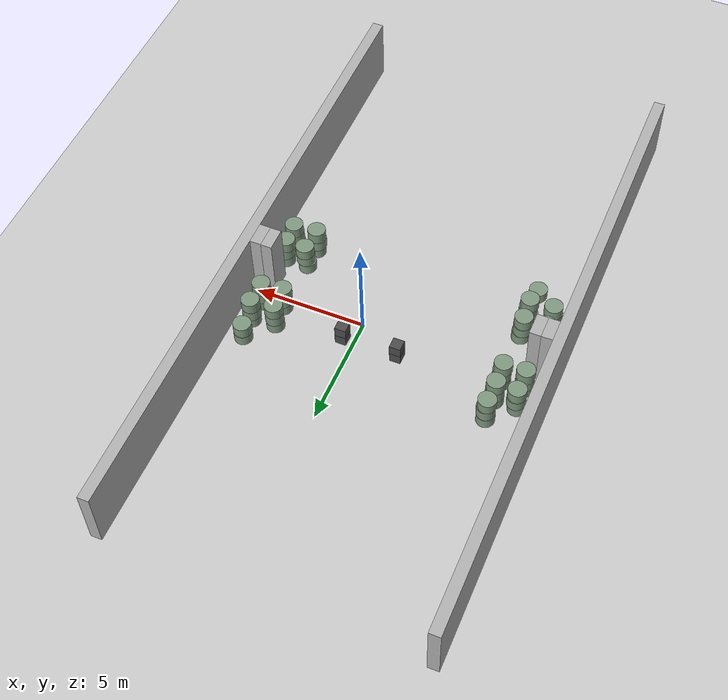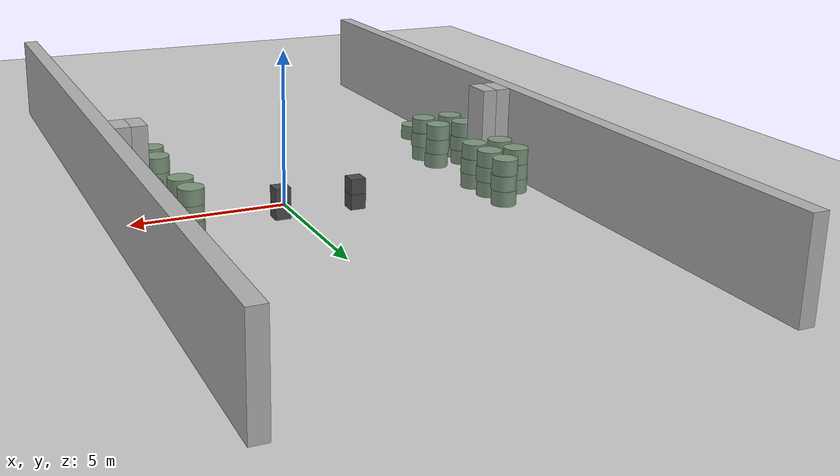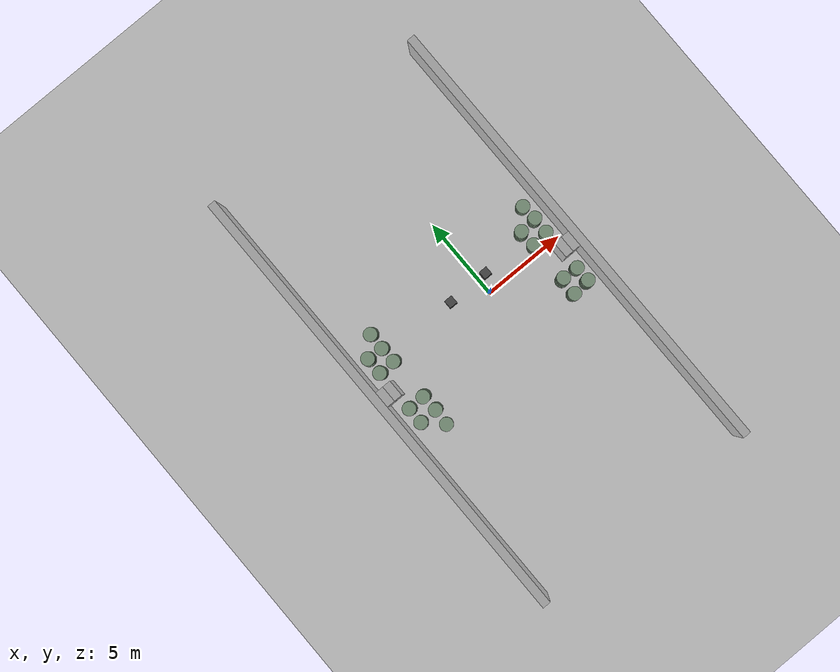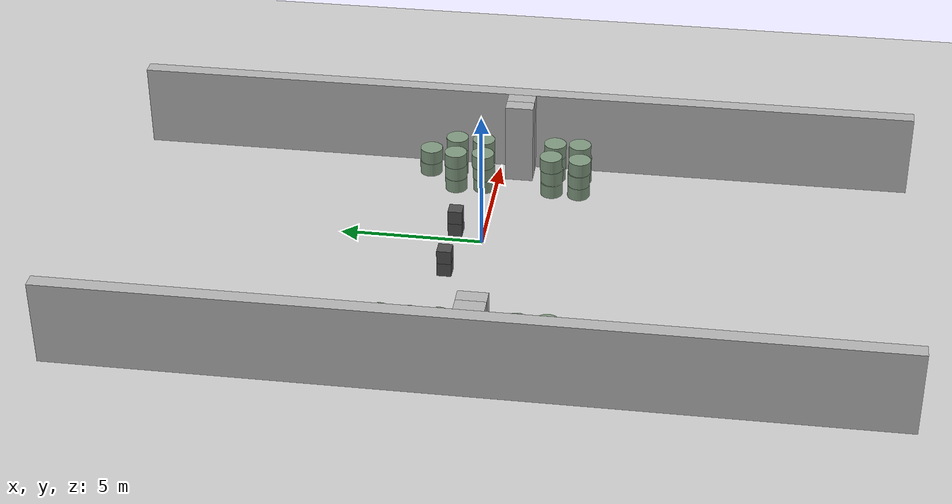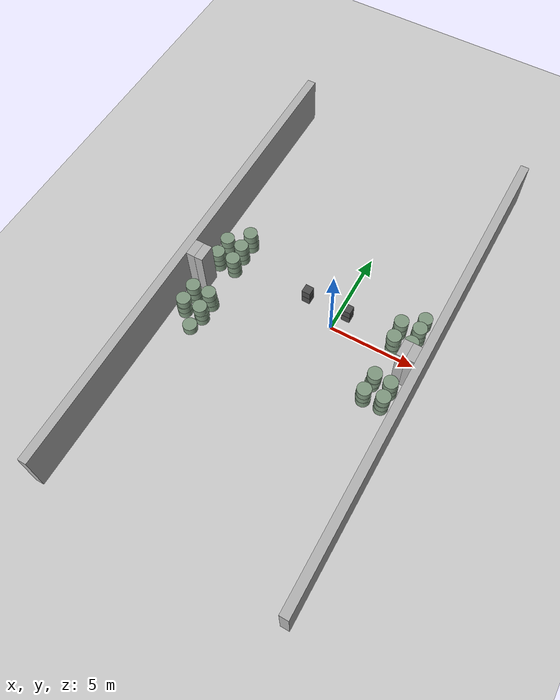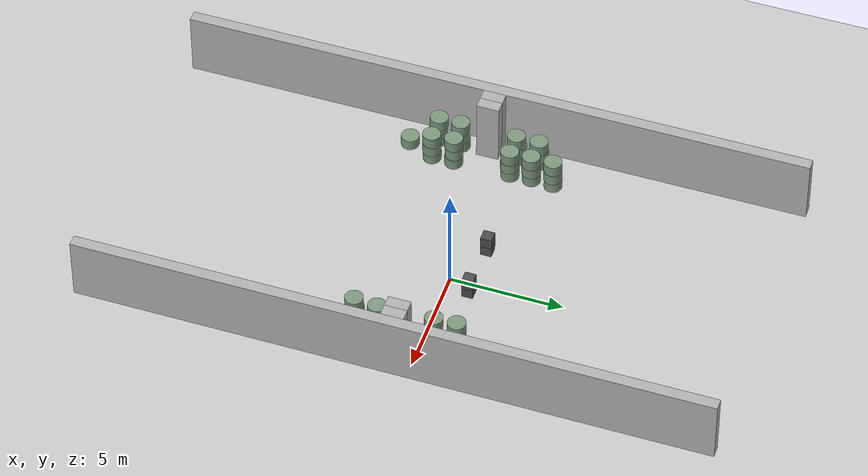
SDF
<sdf version="1.6">
 <world name="default">
  <include><uri>model://ground_plane</uri></include>
  <model name="wall_0">
   <pose>-8.5 -0.75 1.5 0 -0 0</pose>
   <static>True</static>
   <link name="link">
    <inertial>
     <mass>100</mass>
     <inertia>
      <ixx>0.166667</ixx>
      <ixy>0</ixy>
      <ixz>0</ixz>
      <iyy>0.166667</iyy>
      <iyz>0</iyz>
      <izz>0.166667</izz>
     </inertia>
    </inertial>
    <collision name="collision"><geometry><box><size>0.5 28.0 3.0</size></box></geometry></collision>
    <visual name="visual">
     <geometry><box><size>0.5 28.0 3.0</size></box></geometry>
     <material><ambient>0.7 0.7 0.7 1</ambient><diffuse>0.7 0.7 0.7 1</diffuse></material>
    </visual>
   </link>
  </model>
  <model name="wall_2">
   <pose>-8.0 -0.75 1.5 0 -0 0</pose>
   <static>True</static>
   <link name="link">
    <inertial>
     <mass>100</mass>
     <inertia>
      <ixx>0.166667</ixx>
      <ixy>0</ixy>
      <ixz>0</ixz>
      <iyy>0.166667</iyy>
      <iyz>0</iyz>
      <izz>0.166667</izz>
     </inertia>
    </inertial>
    <collision name="collision"><geometry><box><size>0.5 1.0 3.0</size></box></geometry></collision>
    <visual name="visual">
     <geometry><box><size>0.5 1.0 3.0</size></box></geometry>
     <material><ambient>0.7 0.7 0.7 1</ambient><diffuse>0.7 0.7 0.7 1</diffuse></material>
    </visual>
   </link>
  </model>
  <model name="wall_5">
   <pose>-7.5 -0.75 1.5 0 -0 0</pose>
   <static>True</static>
   <link name="link">
    <inertial>
     <mass>100</mass>
     <inertia>
      <ixx>0.166667</ixx>
      <ixy>0</ixy>
      <ixz>0</ixz>
      <iyy>0.166667</iyy>
      <iyz>0</iyz>
      <izz>0.166667</izz>
     </inertia>
    </inertial>
    <collision name="collision"><geometry><box><size>0.5 1.0 3.0</size></box></geometry></collision>
    <visual name="visual">
     <geometry><box><size>0.5 1.0 3.0</size></box></geometry>
     <material><ambient>0.7 0.7 0.7 1</ambient><diffuse>0.7 0.7 0.7 1</diffuse></material>
    </visual>
   </link>
  </model>
  <model name="wall_8">
   <pose>4.5 -0.75 1.5 0 -0 0</pose>
   <static>True</static>
   <link name="link">
    <inertial>
     <mass>100</mass>
     <inertia>
      <ixx>0.166667</ixx>
      <ixy>0</ixy>
      <ixz>0</ixz>
      <iyy>0.166667</iyy>
      <iyz>0</iyz>
      <izz>0.166667</izz>
     </inertia>
    </inertial>
    <collision name="collision"><geometry><box><size>0.5 1.0 3.0</size></box></geometry></collision>
    <visual name="visual">
     <geometry><box><size>0.5 1.0 3.0</size></box></geometry>
     <material><ambient>0.7 0.7 0.7 1</ambient><diffuse>0.7 0.7 0.7 1</diffuse></material>
    </visual>
   </link>
  </model>
  <model name="wall_11">
   <pose>5.0 -0.75 1.5 0 -0 0</pose>
   <static>True</static>
   <link name="link">
    <inertial>
     <mass>100</mass>
     <inertia>
      <ixx>0.166667</ixx>
      <ixy>0</ixy>
      <ixz>0</ixz>
      <iyy>0.166667</iyy>
      <iyz>0</iyz>
      <izz>0.166667</izz>
     </inertia>
    </inertial>
    <collision name="collision"><geometry><box><size>0.5 1.0 3.0</size></box></geometry></collision>
    <visual name="visual">
     <geometry><box><size>0.5 1.0 3.0</size></box></geometry>
     <material><ambient>0.7 0.7 0.7 1</ambient><diffuse>0.7 0.7 0.7 1</diffuse></material>
    </visual>
   </link>
  </model>
  <model name="wall_13">
   <pose>5.5 -0.75 1.5 0 -0 0</pose>
   <static>True</static>
   <link name="link">
    <inertial>
     <mass>100</mass>
     <inertia>
      <ixx>0.166667</ixx>
      <ixy>0</ixy>
      <ixz>0</ixz>
      <iyy>0.166667</iyy>
      <iyz>0</iyz>
      <izz>0.166667</izz>
     </inertia>
    </inertial>
    <collision name="collision"><geometry><box><size>0.5 28.0 3.0</size></box></geometry></collision>
    <visual name="visual">
     <geometry><box><size>0.5 28.0 3.0</size></box></geometry>
     <material><ambient>0.7 0.7 0.7 1</ambient><diffuse>0.7 0.7 0.7 1</diffuse></material>
    </visual>
   </link>
  </model>
  <model name="unit_box_0">
   <pose>-2.0 1.0 0.25 0 -0 0</pose>
   <static>True</static>
   <link name="link">
    <inertial>
     <mass>100</mass>
     <inertia>
      <ixx>0.166667</ixx>
      <ixy>0</ixy>
      <ixz>0</ixz>
      <iyy>0.166667</iyy>
      <iyz>0</iyz>
      <izz>0.166667</izz>
     </inertia>
    </inertial>
    <collision name="collision"><geometry><box><size>0.5 0.5 0.5</size></box></geometry></collision>
    <visual name="visual">
     <geometry><box><size>0.5 0.5 0.5</size></box></geometry>
     <material><ambient>0.3 0.3 0.3 1</ambient><diffuse>0.3 0.3 0.3 1</diffuse></material>
    </visual>
   </link>
  </model>
  <model name="unit_box_1">
   <pose>-2.0 1.0 0.75 0 -0 0</pose>
   <static>True</static>
   <link name="link">
    <inertial>
     <mass>100</mass>
     <inertia>
      <ixx>0.166667</ixx>
      <ixy>0</ixy>
      <ixz>0</ixz>
      <iyy>0.166667</iyy>
      <iyz>0</iyz>
      <izz>0.166667</izz>
     </inertia>
    </inertial>
    <collision name="collision"><geometry><box><size>0.5 0.5 0.5</size></box></geometry></collision>
    <visual name="visual">
     <geometry><box><size>0.5 0.5 0.5</size></box></geometry>
     <material><ambient>0.3 0.3 0.3 1</ambient><diffuse>0.3 0.3 0.3 1</diffuse></material>
    </visual>
   </link>
  </model>
  <model name="unit_box_22">
   <pose>0.5 1.0 0.25 0 -0 0</pose>
   <static>True</static>
   <link name="link">
    <inertial>
     <mass>100</mass>
     <inertia>
      <ixx>0.166667</ixx>
      <ixy>0</ixy>
      <ixz>0</ixz>
      <iyy>0.166667</iyy>
      <iyz>0</iyz>
      <izz>0.166667</izz>
     </inertia>
    </inertial>
    <collision name="collision"><geometry><box><size>0.5 0.5 0.5</size></box></geometry></collision>
    <visual name="visual">
     <geometry><box><size>0.5 0.5 0.5</size></box></geometry>
     <material><ambient>0.3 0.3 0.3 1</ambient><diffuse>0.3 0.3 0.3 1</diffuse></material>
    </visual>
   </link>
  </model>
  <model name="unit_box_23">
   <pose>0.5 1.0 0.75 0 -0 0</pose>
   <static>True</static>
   <link name="link">
    <inertial>
     <mass>100</mass>
     <inertia>
      <ixx>0.166667</ixx>
      <ixy>0</ixy>
      <ixz>0</ixz>
      <iyy>0.166667</iyy>
      <iyz>0</iyz>
      <izz>0.166667</izz>
     </inertia>
    </inertial>
    <collision name="collision"><geometry><box><size>0.5 0.5 0.5</size></box></geometry></collision>
    <visual name="visual">
     <geometry><box><size>0.5 0.5 0.5</size></box></geometry>
     <material><ambient>0.3 0.3 0.3 1</ambient><diffuse>0.3 0.3 0.3 1</diffuse></material>
    </visual>
   </link>
  </model>
  <model name="unit_cylinder_27">
   <pose>-7.53266589157 -3.04571296709 0.25 0 -0 0</pose>
   <static>True</static>
   <link name="link">
    <inertial>
     <mass>100</mass>
     <inertia><ixx>0.145833</ixx><ixy>0</ixy><ixz>0</ixz><iyy>0.145833</iyy><iyz>0</iyz><izz>0.125</izz></inertia>
    </inertial>
    <collision name="collision">
     <geometry><cylinder><radius>0.4</radius><length>0.5</length></cylinder></geometry>
     <max_contacts>100</max_contacts>
    </collision>
    <visual name="visual">
     <geometry><cylinder><radius>0.4</radius><length>0.5</length></cylinder></geometry>
     <material><ambient>0.5 0.6 0.5 1</ambient><diffuse>0.5 0.6 0.5 1</diffuse></material>
    </visual>
   </link>
  </model>
  <model name="unit_cylinder_28">
   <pose>-7.51678684536 -3.05807027582 0.75 0 -0 0</pose>
   <static>True</static>
   <link name="link">
    <inertial>
     <mass>100</mass>
     <inertia><ixx>0.145833</ixx><ixy>0</ixy><ixz>0</ixz><iyy>0.145833</iyy><iyz>0</iyz><izz>0.125</izz></inertia>
    </inertial>
    <collision name="collision">
     <geometry><cylinder><radius>0.4</radius><length>0.5</length></cylinder></geometry>
     <max_contacts>100</max_contacts>
    </collision>
    <visual name="visual">
     <geometry><cylinder><radius>0.4</radius><length>0.5</length></cylinder></geometry>
     <material><ambient>0.5 0.6 0.5 1</ambient><diffuse>0.5 0.6 0.5 1</diffuse></material>
    </visual>
   </link>
  </model>
  <model name="unit_cylinder_29">
   <pose>-7.50328371297 -3.01786502053 1.25 0 -0 0</pose>
   <static>True</static>
   <link name="link">
    <inertial>
     <mass>100</mass>
     <inertia><ixx>0.145833</ixx><ixy>0</ixy><ixz>0</ixz><iyy>0.145833</iyy><iyz>0</iyz><izz>0.125</izz></inertia>
    </inertial>
    <collision name="collision">
     <geometry><cylinder><radius>0.4</radius><length>0.5</length></cylinder></geometry>
     <max_contacts>100</max_contacts>
    </collision>
    <visual name="visual">
     <geometry><cylinder><radius>0.4</radius><length>0.5</length></cylinder></geometry>
     <material><ambient>0.5 0.6 0.5 1</ambient><diffuse>0.5 0.6 0.5 1</diffuse></material>
    </visual>
   </link>
  </model>
  <model name="unit_cylinder_30">
   <pose>-7.51674457304 -2.0184611968 0.25 0 -0 0</pose>
   <static>True</static>
   <link name="link">
    <inertial>
     <mass>100</mass>
     <inertia><ixx>0.145833</ixx><ixy>0</ixy><ixz>0</ixz><iyy>0.145833</iyy><iyz>0</iyz><izz>0.125</izz></inertia>
    </inertial>
    <collision name="collision">
     <geometry><cylinder><radius>0.4</radius><length>0.5</length></cylinder></geometry>
     <max_contacts>100</max_contacts>
    </collision>
    <visual name="visual">
     <geometry><cylinder><radius>0.4</radius><length>0.5</length></cylinder></geometry>
     <material><ambient>0.5 0.6 0.5 1</ambient><diffuse>0.5 0.6 0.5 1</diffuse></material>
    </visual>
   </link>
  </model>
  <model name="unit_cylinder_31">
   <pose>-7.48743675623 -2.06032815235 0.75 0 -0 0</pose>
   <static>True</static>
   <link name="link">
    <inertial>
     <mass>100</mass>
     <inertia><ixx>0.145833</ixx><ixy>0</ixy><ixz>0</ixz><iyy>0.145833</iyy><iyz>0</iyz><izz>0.125</izz></inertia>
    </inertial>
    <collision name="collision">
     <geometry><cylinder><radius>0.4</radius><length>0.5</length></cylinder></geometry>
     <max_contacts>100</max_contacts>
    </collision>
    <visual name="visual">
     <geometry><cylinder><radius>0.4</radius><length>0.5</length></cylinder></geometry>
     <material><ambient>0.5 0.6 0.5 1</ambient><diffuse>0.5 0.6 0.5 1</diffuse></material>
    </visual>
   </link>
  </model>
  <model name="unit_cylinder_32">
   <pose>-7.51034380854 -2.04572871489 1.25 0 -0 0</pose>
   <static>True</static>
   <link name="link">
    <inertial>
     <mass>100</mass>
     <inertia><ixx>0.145833</ixx><ixy>0</ixy><ixz>0</ixz><iyy>0.145833</iyy><iyz>0</iyz><izz>0.125</izz></inertia>
    </inertial>
    <collision name="collision">
     <geometry><cylinder><radius>0.4</radius><length>0.5</length></cylinder></geometry>
     <max_contacts>100</max_contacts>
    </collision>
    <visual name="visual">
     <geometry><cylinder><radius>0.4</radius><length>0.5</length></cylinder></geometry>
     <material><ambient>0.5 0.6 0.5 1</ambient><diffuse>0.5 0.6 0.5 1</diffuse></material>
    </visual>
   </link>
  </model>
  <model name="unit_cylinder_33">
   <pose>-7.49661119937 0.495077973856 0.25 0 -0 0</pose>
   <static>True</static>
   <link name="link">
    <inertial>
     <mass>100</mass>
     <inertia><ixx>0.145833</ixx><ixy>0</ixy><ixz>0</ixz><iyy>0.145833</iyy><iyz>0</iyz><izz>0.125</izz></inertia>
    </inertial>
    <collision name="collision">
     <geometry><cylinder><radius>0.4</radius><length>0.5</length></cylinder></geometry>
     <max_contacts>100</max_contacts>
    </collision>
    <visual name="visual">
     <geometry><cylinder><radius>0.4</radius><length>0.5</length></cylinder></geometry>
     <material><ambient>0.5 0.6 0.5 1</ambient><diffuse>0.5 0.6 0.5 1</diffuse></material>
    </visual>
   </link>
  </model>
  <model name="unit_cylinder_34">
   <pose>-7.50745371307 0.532442929102 0.75 0 -0 0</pose>
   <static>True</static>
   <link name="link">
    <inertial>
     <mass>100</mass>
     <inertia><ixx>0.145833</ixx><ixy>0</ixy><ixz>0</ixz><iyy>0.145833</iyy><iyz>0</iyz><izz>0.125</izz></inertia>
    </inertial>
    <collision name="collision">
     <geometry><cylinder><radius>0.4</radius><length>0.5</length></cylinder></geometry>
     <max_contacts>100</max_contacts>
    </collision>
    <visual name="visual">
     <geometry><cylinder><radius>0.4</radius><length>0.5</length></cylinder></geometry>
     <material><ambient>0.5 0.6 0.5 1</ambient><diffuse>0.5 0.6 0.5 1</diffuse></material>
    </visual>
   </link>
  </model>
  <model name="unit_cylinder_35">
   <pose>-7.50086118267 0.484942837579 1.25 0 -0 0</pose>
   <static>True</static>
   <link name="link">
    <inertial>
     <mass>100</mass>
     <inertia><ixx>0.145833</ixx><ixy>0</ixy><ixz>0</ixz><iyy>0.145833</iyy><iyz>0</iyz><izz>0.125</izz></inertia>
    </inertial>
    <collision name="collision">
     <geometry><cylinder><radius>0.4</radius><length>0.5</length></cylinder></geometry>
     <max_contacts>100</max_contacts>
    </collision>
    <visual name="visual">
     <geometry><cylinder><radius>0.4</radius><length>0.5</length></cylinder></geometry>
     <material><ambient>0.5 0.6 0.5 1</ambient><diffuse>0.5 0.6 0.5 1</diffuse></material>
    </visual>
   </link>
  </model>
  <model name="unit_cylinder_36">
   <pose>-7.52415000353 1.48454482458 0.25 0 -0 0</pose>
   <static>True</static>
   <link name="link">
    <inertial>
     <mass>100</mass>
     <inertia><ixx>0.145833</ixx><ixy>0</ixy><ixz>0</ixz><iyy>0.145833</iyy><iyz>0</iyz><izz>0.125</izz></inertia>
    </inertial>
    <collision name="collision">
     <geometry><cylinder><radius>0.4</radius><length>0.5</length></cylinder></geometry>
     <max_contacts>100</max_contacts>
    </collision>
    <visual name="visual">
     <geometry><cylinder><radius>0.4</radius><length>0.5</length></cylinder></geometry>
     <material><ambient>0.5 0.6 0.5 1</ambient><diffuse>0.5 0.6 0.5 1</diffuse></material>
    </visual>
   </link>
  </model>
  <model name="unit_cylinder_37">
   <pose>-7.48065793615 1.53373461408 0.75 0 -0 0</pose>
   <static>True</static>
   <link name="link">
    <inertial>
     <mass>100</mass>
     <inertia><ixx>0.145833</ixx><ixy>0</ixy><ixz>0</ixz><iyy>0.145833</iyy><iyz>0</iyz><izz>0.125</izz></inertia>
    </inertial>
    <collision name="collision">
     <geometry><cylinder><radius>0.4</radius><length>0.5</length></cylinder></geometry>
     <max_contacts>100</max_contacts>
    </collision>
    <visual name="visual">
     <geometry><cylinder><radius>0.4</radius><length>0.5</length></cylinder></geometry>
     <material><ambient>0.5 0.6 0.5 1</ambient><diffuse>0.5 0.6 0.5 1</diffuse></material>
    </visual>
   </link>
  </model>
  <model name="unit_cylinder_38">
   <pose>-7.49117858882 1.51134901372 1.25 0 -0 0</pose>
   <static>True</static>
   <link name="link">
    <inertial>
     <mass>100</mass>
     <inertia><ixx>0.145833</ixx><ixy>0</ixy><ixz>0</ixz><iyy>0.145833</iyy><iyz>0</iyz><izz>0.125</izz></inertia>
    </inertial>
    <collision name="collision">
     <geometry><cylinder><radius>0.4</radius><length>0.5</length></cylinder></geometry>
     <max_contacts>100</max_contacts>
    </collision>
    <visual name="visual">
     <geometry><cylinder><radius>0.4</radius><length>0.5</length></cylinder></geometry>
     <material><ambient>0.5 0.6 0.5 1</ambient><diffuse>0.5 0.6 0.5 1</diffuse></material>
    </visual>
   </link>
  </model>
  <model name="unit_cylinder_79">
   <pose>-6.51592383141 -4.00610899814 0.75 0 -0 0</pose>
   <static>True</static>
   <link name="link">
    <inertial>
     <mass>100</mass>
     <inertia><ixx>0.145833</ixx><ixy>0</ixy><ixz>0</ixz><iyy>0.145833</iyy><iyz>0</iyz><izz>0.125</izz></inertia>
    </inertial>
    <collision name="collision">
     <geometry><cylinder><radius>0.4</radius><length>0.5</length></cylinder></geometry>
     <max_contacts>100</max_contacts>
    </collision>
    <visual name="visual">
     <geometry><cylinder><radius>0.4</radius><length>0.5</length></cylinder></geometry>
     <material><ambient>0.5 0.6 0.5 1</ambient><diffuse>0.5 0.6 0.5 1</diffuse></material>
    </visual>
   </link>
  </model>
  <model name="unit_cylinder_81">
   <pose>-6.46607439479 -2.99443059297 0.25 0 -0 0</pose>
   <static>True</static>
   <link name="link">
    <inertial>
     <mass>100</mass>
     <inertia><ixx>0.145833</ixx><ixy>0</ixy><ixz>0</ixz><iyy>0.145833</iyy><iyz>0</iyz><izz>0.125</izz></inertia>
    </inertial>
    <collision name="collision">
     <geometry><cylinder><radius>0.4</radius><length>0.5</length></cylinder></geometry>
     <max_contacts>100</max_contacts>
    </collision>
    <visual name="visual">
     <geometry><cylinder><radius>0.4</radius><length>0.5</length></cylinder></geometry>
     <material><ambient>0.5 0.6 0.5 1</ambient><diffuse>0.5 0.6 0.5 1</diffuse></material>
    </visual>
   </link>
  </model>
  <model name="unit_cylinder_82">
   <pose>-6.41535966985 -2.99280702929 0.75 0 -0 0</pose>
   <static>True</static>
   <link name="link">
    <inertial>
     <mass>100</mass>
     <inertia><ixx>0.145833</ixx><ixy>0</ixy><ixz>0</ixz><iyy>0.145833</iyy><iyz>0</iyz><izz>0.125</izz></inertia>
    </inertial>
    <collision name="collision">
     <geometry><cylinder><radius>0.4</radius><length>0.5</length></cylinder></geometry>
     <max_contacts>100</max_contacts>
    </collision>
    <visual name="visual">
     <geometry><cylinder><radius>0.4</radius><length>0.5</length></cylinder></geometry>
     <material><ambient>0.5 0.6 0.5 1</ambient><diffuse>0.5 0.6 0.5 1</diffuse></material>
    </visual>
   </link>
  </model>
  <model name="unit_cylinder_83">
   <pose>-6.45194949177 -3.0112398954 1.25 0 -0 0</pose>
   <static>True</static>
   <link name="link">
    <inertial>
     <mass>100</mass>
     <inertia><ixx>0.145833</ixx><ixy>0</ixy><ixz>0</ixz><iyy>0.145833</iyy><iyz>0</iyz><izz>0.125</izz></inertia>
    </inertial>
    <collision name="collision">
     <geometry><cylinder><radius>0.4</radius><length>0.5</length></cylinder></geometry>
     <max_contacts>100</max_contacts>
    </collision>
    <visual name="visual">
     <geometry><cylinder><radius>0.4</radius><length>0.5</length></cylinder></geometry>
     <material><ambient>0.5 0.6 0.5 1</ambient><diffuse>0.5 0.6 0.5 1</diffuse></material>
    </visual>
   </link>
  </model>
  <model name="unit_cylinder_84">
   <pose>-6.46215445833 -2.00806282248 0.25 0 -0 0</pose>
   <static>True</static>
   <link name="link">
    <inertial>
     <mass>100</mass>
     <inertia><ixx>0.145833</ixx><ixy>0</ixy><ixz>0</ixz><iyy>0.145833</iyy><iyz>0</iyz><izz>0.125</izz></inertia>
    </inertial>
    <collision name="collision">
     <geometry><cylinder><radius>0.4</radius><length>0.5</length></cylinder></geometry>
     <max_contacts>100</max_contacts>
    </collision>
    <visual name="visual">
     <geometry><cylinder><radius>0.4</radius><length>0.5</length></cylinder></geometry>
     <material><ambient>0.5 0.6 0.5 1</ambient><diffuse>0.5 0.6 0.5 1</diffuse></material>
    </visual>
   </link>
  </model>
  <model name="unit_cylinder_85">
   <pose>-6.50237009343 -2.00876777148 0.75 0 -0 0</pose>
   <static>True</static>
   <link name="link">
    <inertial>
     <mass>100</mass>
     <inertia><ixx>0.145833</ixx><ixy>0</ixy><ixz>0</ixz><iyy>0.145833</iyy><iyz>0</iyz><izz>0.125</izz></inertia>
    </inertial>
    <collision name="collision">
     <geometry><cylinder><radius>0.4</radius><length>0.5</length></cylinder></geometry>
     <max_contacts>100</max_contacts>
    </collision>
    <visual name="visual">
     <geometry><cylinder><radius>0.4</radius><length>0.5</length></cylinder></geometry>
     <material><ambient>0.5 0.6 0.5 1</ambient><diffuse>0.5 0.6 0.5 1</diffuse></material>
    </visual>
   </link>
  </model>
  <model name="unit_cylinder_86">
   <pose>-6.51470186261 -2.02841942714 1.25 0 -0 0</pose>
   <static>True</static>
   <link name="link">
    <inertial>
     <mass>100</mass>
     <inertia><ixx>0.145833</ixx><ixy>0</ixy><ixz>0</ixz><iyy>0.145833</iyy><iyz>0</iyz><izz>0.125</izz></inertia>
    </inertial>
    <collision name="collision">
     <geometry><cylinder><radius>0.4</radius><length>0.5</length></cylinder></geometry>
     <max_contacts>100</max_contacts>
    </collision>
    <visual name="visual">
     <geometry><cylinder><radius>0.4</radius><length>0.5</length></cylinder></geometry>
     <material><ambient>0.5 0.6 0.5 1</ambient><diffuse>0.5 0.6 0.5 1</diffuse></material>
    </visual>
   </link>
  </model>
  <model name="unit_cylinder_87">
   <pose>-6.50122139755 0.528556796005 0.25 0 -0 0</pose>
   <static>True</static>
   <link name="link">
    <inertial>
     <mass>100</mass>
     <inertia><ixx>0.145833</ixx><ixy>0</ixy><ixz>0</ixz><iyy>0.145833</iyy><iyz>0</iyz><izz>0.125</izz></inertia>
    </inertial>
    <collision name="collision">
     <geometry><cylinder><radius>0.4</radius><length>0.5</length></cylinder></geometry>
     <max_contacts>100</max_contacts>
    </collision>
    <visual name="visual">
     <geometry><cylinder><radius>0.4</radius><length>0.5</length></cylinder></geometry>
     <material><ambient>0.5 0.6 0.5 1</ambient><diffuse>0.5 0.6 0.5 1</diffuse></material>
    </visual>
   </link>
  </model>
  <model name="unit_cylinder_88">
   <pose>-6.49044972938 0.508644526481 0.75 0 -0 0</pose>
   <static>True</static>
   <link name="link">
    <inertial>
     <mass>100</mass>
     <inertia><ixx>0.145833</ixx><ixy>0</ixy><ixz>0</ixz><iyy>0.145833</iyy><iyz>0</iyz><izz>0.125</izz></inertia>
    </inertial>
    <collision name="collision">
     <geometry><cylinder><radius>0.4</radius><length>0.5</length></cylinder></geometry>
     <max_contacts>100</max_contacts>
    </collision>
    <visual name="visual">
     <geometry><cylinder><radius>0.4</radius><length>0.5</length></cylinder></geometry>
     <material><ambient>0.5 0.6 0.5 1</ambient><diffuse>0.5 0.6 0.5 1</diffuse></material>
    </visual>
   </link>
  </model>
  <model name="unit_cylinder_89">
   <pose>-6.52665574944 0.502361702512 1.25 0 -0 0</pose>
   <static>True</static>
   <link name="link">
    <inertial>
     <mass>100</mass>
     <inertia><ixx>0.145833</ixx><ixy>0</ixy><ixz>0</ixz><iyy>0.145833</iyy><iyz>0</iyz><izz>0.125</izz></inertia>
    </inertial>
    <collision name="collision">
     <geometry><cylinder><radius>0.4</radius><length>0.5</length></cylinder></geometry>
     <max_contacts>100</max_contacts>
    </collision>
    <visual name="visual">
     <geometry><cylinder><radius>0.4</radius><length>0.5</length></cylinder></geometry>
     <material><ambient>0.5 0.6 0.5 1</ambient><diffuse>0.5 0.6 0.5 1</diffuse></material>
    </visual>
   </link>
  </model>
  <model name="unit_cylinder_90">
   <pose>-6.54445827039 1.49282401285 0.25 0 -0 0</pose>
   <static>True</static>
   <link name="link">
    <inertial>
     <mass>100</mass>
     <inertia><ixx>0.145833</ixx><ixy>0</ixy><ixz>0</ixz><iyy>0.145833</iyy><iyz>0</iyz><izz>0.125</izz></inertia>
    </inertial>
    <collision name="collision">
     <geometry><cylinder><radius>0.4</radius><length>0.5</length></cylinder></geometry>
     <max_contacts>100</max_contacts>
    </collision>
    <visual name="visual">
     <geometry><cylinder><radius>0.4</radius><length>0.5</length></cylinder></geometry>
     <material><ambient>0.5 0.6 0.5 1</ambient><diffuse>0.5 0.6 0.5 1</diffuse></material>
    </visual>
   </link>
  </model>
  <model name="unit_cylinder_91">
   <pose>-6.52922498972 1.46381330664 0.75 0 -0 0</pose>
   <static>True</static>
   <link name="link">
    <inertial>
     <mass>100</mass>
     <inertia><ixx>0.145833</ixx><ixy>0</ixy><ixz>0</ixz><iyy>0.145833</iyy><iyz>0</iyz><izz>0.125</izz></inertia>
    </inertial>
    <collision name="collision">
     <geometry><cylinder><radius>0.4</radius><length>0.5</length></cylinder></geometry>
     <max_contacts>100</max_contacts>
    </collision>
    <visual name="visual">
     <geometry><cylinder><radius>0.4</radius><length>0.5</length></cylinder></geometry>
     <material><ambient>0.5 0.6 0.5 1</ambient><diffuse>0.5 0.6 0.5 1</diffuse></material>
    </visual>
   </link>
  </model>
  <model name="unit_cylinder_92">
   <pose>-6.54987776217 1.45750668794 1.25 0 -0 0</pose>
   <static>True</static>
   <link name="link">
    <inertial>
     <mass>100</mass>
     <inertia><ixx>0.145833</ixx><ixy>0</ixy><ixz>0</ixz><iyy>0.145833</iyy><iyz>0</iyz><izz>0.125</izz></inertia>
    </inertial>
    <collision name="collision">
     <geometry><cylinder><radius>0.4</radius><length>0.5</length></cylinder></geometry>
     <max_contacts>100</max_contacts>
    </collision>
    <visual name="visual">
     <geometry><cylinder><radius>0.4</radius><length>0.5</length></cylinder></geometry>
     <material><ambient>0.5 0.6 0.5 1</ambient><diffuse>0.5 0.6 0.5 1</diffuse></material>
    </visual>
   </link>
  </model>
  <model name="unit_cylinder_93">
   <pose>-6.51953723222 2.47310626164 0.25 0 -0 0</pose>
   <static>True</static>
   <link name="link">
    <inertial>
     <mass>100</mass>
     <inertia><ixx>0.145833</ixx><ixy>0</ixy><ixz>0</ixz><iyy>0.145833</iyy><iyz>0</iyz><izz>0.125</izz></inertia>
    </inertial>
    <collision name="collision">
     <geometry><cylinder><radius>0.4</radius><length>0.5</length></cylinder></geometry>
     <max_contacts>100</max_contacts>
    </collision>
    <visual name="visual">
     <geometry><cylinder><radius>0.4</radius><length>0.5</length></cylinder></geometry>
     <material><ambient>0.5 0.6 0.5 1</ambient><diffuse>0.5 0.6 0.5 1</diffuse></material>
    </visual>
   </link>
  </model>
  <model name="unit_cylinder_94">
   <pose>-6.49744391277 2.45519312233 0.75 0 -0 0</pose>
   <static>True</static>
   <link name="link">
    <inertial>
     <mass>100</mass>
     <inertia><ixx>0.145833</ixx><ixy>0</ixy><ixz>0</ixz><iyy>0.145833</iyy><iyz>0</iyz><izz>0.125</izz></inertia>
    </inertial>
    <collision name="collision">
     <geometry><cylinder><radius>0.4</radius><length>0.5</length></cylinder></geometry>
     <max_contacts>100</max_contacts>
    </collision>
    <visual name="visual">
     <geometry><cylinder><radius>0.4</radius><length>0.5</length></cylinder></geometry>
     <material><ambient>0.5 0.6 0.5 1</ambient><diffuse>0.5 0.6 0.5 1</diffuse></material>
    </visual>
   </link>
  </model>
  <model name="unit_cylinder_95">
   <pose>-6.53291290162 2.44198064958 1.25 0 -0 0</pose>
   <static>True</static>
   <link name="link">
    <inertial>
     <mass>100</mass>
     <inertia><ixx>0.145833</ixx><ixy>0</ixy><ixz>0</ixz><iyy>0.145833</iyy><iyz>0</iyz><izz>0.125</izz></inertia>
    </inertial>
    <collision name="collision">
     <geometry><cylinder><radius>0.4</radius><length>0.5</length></cylinder></geometry>
     <max_contacts>100</max_contacts>
    </collision>
    <visual name="visual">
     <geometry><cylinder><radius>0.4</radius><length>0.5</length></cylinder></geometry>
     <material><ambient>0.5 0.6 0.5 1</ambient><diffuse>0.5 0.6 0.5 1</diffuse></material>
    </visual>
   </link>
  </model>
  <model name="unit_cylinder_147">
   <pose>3.5070269557 -3.01892822304 0.25 0 -0 0</pose>
   <static>True</static>
   <link name="link">
    <inertial>
     <mass>100</mass>
     <inertia><ixx>0.145833</ixx><ixy>0</ixy><ixz>0</ixz><iyy>0.145833</iyy><iyz>0</iyz><izz>0.125</izz></inertia>
    </inertial>
    <collision name="collision">
     <geometry><cylinder><radius>0.4</radius><length>0.5</length></cylinder></geometry>
     <max_contacts>100</max_contacts>
    </collision>
    <visual name="visual">
     <geometry><cylinder><radius>0.4</radius><length>0.5</length></cylinder></geometry>
     <material><ambient>0.5 0.6 0.5 1</ambient><diffuse>0.5 0.6 0.5 1</diffuse></material>
    </visual>
   </link>
  </model>
  <model name="unit_cylinder_148">
   <pose>3.46641922196 -3.02256164739 0.75 0 -0 0</pose>
   <static>True</static>
   <link name="link">
    <inertial>
     <mass>100</mass>
     <inertia><ixx>0.145833</ixx><ixy>0</ixy><ixz>0</ixz><iyy>0.145833</iyy><iyz>0</iyz><izz>0.125</izz></inertia>
    </inertial>
    <collision name="collision">
     <geometry><cylinder><radius>0.4</radius><length>0.5</length></cylinder></geometry>
     <max_contacts>100</max_contacts>
    </collision>
    <visual name="visual">
     <geometry><cylinder><radius>0.4</radius><length>0.5</length></cylinder></geometry>
     <material><ambient>0.5 0.6 0.5 1</ambient><diffuse>0.5 0.6 0.5 1</diffuse></material>
    </visual>
   </link>
  </model>
  <model name="unit_cylinder_149">
   <pose>3.49766116187 -3.03990348281 1.25 0 -0 0</pose>
   <static>True</static>
   <link name="link">
    <inertial>
     <mass>100</mass>
     <inertia><ixx>0.145833</ixx><ixy>0</ixy><ixz>0</ixz><iyy>0.145833</iyy><iyz>0</iyz><izz>0.125</izz></inertia>
    </inertial>
    <collision name="collision">
     <geometry><cylinder><radius>0.4</radius><length>0.5</length></cylinder></geometry>
     <max_contacts>100</max_contacts>
    </collision>
    <visual name="visual">
     <geometry><cylinder><radius>0.4</radius><length>0.5</length></cylinder></geometry>
     <material><ambient>0.5 0.6 0.5 1</ambient><diffuse>0.5 0.6 0.5 1</diffuse></material>
    </visual>
   </link>
  </model>
  <model name="unit_cylinder_150">
   <pose>3.53220594948 -2.03765749675 0.25 0 -0 0</pose>
   <static>True</static>
   <link name="link">
    <inertial>
     <mass>100</mass>
     <inertia><ixx>0.145833</ixx><ixy>0</ixy><ixz>0</ixz><iyy>0.145833</iyy><iyz>0</iyz><izz>0.125</izz></inertia>
    </inertial>
    <collision name="collision">
     <geometry><cylinder><radius>0.4</radius><length>0.5</length></cylinder></geometry>
     <max_contacts>100</max_contacts>
    </collision>
    <visual name="visual">
     <geometry><cylinder><radius>0.4</radius><length>0.5</length></cylinder></geometry>
     <material><ambient>0.5 0.6 0.5 1</ambient><diffuse>0.5 0.6 0.5 1</diffuse></material>
    </visual>
   </link>
  </model>
  <model name="unit_cylinder_151">
   <pose>3.58746150632 -2.03145083773 0.75 0 -0 0</pose>
   <static>True</static>
   <link name="link">
    <inertial>
     <mass>100</mass>
     <inertia><ixx>0.145833</ixx><ixy>0</ixy><ixz>0</ixz><iyy>0.145833</iyy><iyz>0</iyz><izz>0.125</izz></inertia>
    </inertial>
    <collision name="collision">
     <geometry><cylinder><radius>0.4</radius><length>0.5</length></cylinder></geometry>
     <max_contacts>100</max_contacts>
    </collision>
    <visual name="visual">
     <geometry><cylinder><radius>0.4</radius><length>0.5</length></cylinder></geometry>
     <material><ambient>0.5 0.6 0.5 1</ambient><diffuse>0.5 0.6 0.5 1</diffuse></material>
    </visual>
   </link>
  </model>
  <model name="unit_cylinder_152">
   <pose>3.58690641085 -1.99545707928 1.25 0 -0 0</pose>
   <static>True</static>
   <link name="link">
    <inertial>
     <mass>100</mass>
     <inertia><ixx>0.145833</ixx><ixy>0</ixy><ixz>0</ixz><iyy>0.145833</iyy><iyz>0</iyz><izz>0.125</izz></inertia>
    </inertial>
    <collision name="collision">
     <geometry><cylinder><radius>0.4</radius><length>0.5</length></cylinder></geometry>
     <max_contacts>100</max_contacts>
    </collision>
    <visual name="visual">
     <geometry><cylinder><radius>0.4</radius><length>0.5</length></cylinder></geometry>
     <material><ambient>0.5 0.6 0.5 1</ambient><diffuse>0.5 0.6 0.5 1</diffuse></material>
    </visual>
   </link>
  </model>
  <model name="unit_cylinder_153">
   <pose>3.54179207382 0.422841231204 0.25 0 -0 0</pose>
   <static>True</static>
   <link name="link">
    <inertial>
     <mass>100</mass>
     <inertia><ixx>0.145833</ixx><ixy>0</ixy><ixz>0</ixz><iyy>0.145833</iyy><iyz>0</iyz><izz>0.125</izz></inertia>
    </inertial>
    <collision name="collision">
     <geometry><cylinder><radius>0.4</radius><length>0.5</length></cylinder></geometry>
     <max_contacts>100</max_contacts>
    </collision>
    <visual name="visual">
     <geometry><cylinder><radius>0.4</radius><length>0.5</length></cylinder></geometry>
     <material><ambient>0.5 0.6 0.5 1</ambient><diffuse>0.5 0.6 0.5 1</diffuse></material>
    </visual>
   </link>
  </model>
  <model name="unit_cylinder_154">
   <pose>3.53689307115 0.441331702636 0.75 0 -0 0</pose>
   <static>True</static>
   <link name="link">
    <inertial>
     <mass>100</mass>
     <inertia><ixx>0.145833</ixx><ixy>0</ixy><ixz>0</ixz><iyy>0.145833</iyy><iyz>0</iyz><izz>0.125</izz></inertia>
    </inertial>
    <collision name="collision">
     <geometry><cylinder><radius>0.4</radius><length>0.5</length></cylinder></geometry>
     <max_contacts>100</max_contacts>
    </collision>
    <visual name="visual">
     <geometry><cylinder><radius>0.4</radius><length>0.5</length></cylinder></geometry>
     <material><ambient>0.5 0.6 0.5 1</ambient><diffuse>0.5 0.6 0.5 1</diffuse></material>
    </visual>
   </link>
  </model>
  <model name="unit_cylinder_155">
   <pose>3.49811071074 0.461215697993 1.25 0 -0 0</pose>
   <static>True</static>
   <link name="link">
    <inertial>
     <mass>100</mass>
     <inertia><ixx>0.145833</ixx><ixy>0</ixy><ixz>0</ixz><iyy>0.145833</iyy><iyz>0</iyz><izz>0.125</izz></inertia>
    </inertial>
    <collision name="collision">
     <geometry><cylinder><radius>0.4</radius><length>0.5</length></cylinder></geometry>
     <max_contacts>100</max_contacts>
    </collision>
    <visual name="visual">
     <geometry><cylinder><radius>0.4</radius><length>0.5</length></cylinder></geometry>
     <material><ambient>0.5 0.6 0.5 1</ambient><diffuse>0.5 0.6 0.5 1</diffuse></material>
    </visual>
   </link>
  </model>
  <model name="unit_cylinder_156">
   <pose>3.45494319421 1.4296723229 0.25 0 -0 0</pose>
   <static>True</static>
   <link name="link">
    <inertial>
     <mass>100</mass>
     <inertia><ixx>0.145833</ixx><ixy>0</ixy><ixz>0</ixz><iyy>0.145833</iyy><iyz>0</iyz><izz>0.125</izz></inertia>
    </inertial>
    <collision name="collision">
     <geometry><cylinder><radius>0.4</radius><length>0.5</length></cylinder></geometry>
     <max_contacts>100</max_contacts>
    </collision>
    <visual name="visual">
     <geometry><cylinder><radius>0.4</radius><length>0.5</length></cylinder></geometry>
     <material><ambient>0.5 0.6 0.5 1</ambient><diffuse>0.5 0.6 0.5 1</diffuse></material>
    </visual>
   </link>
  </model>
  <model name="unit_cylinder_157">
   <pose>3.46741353493 1.44332437504 0.75 0 -0 0</pose>
   <static>True</static>
   <link name="link">
    <inertial>
     <mass>100</mass>
     <inertia><ixx>0.145833</ixx><ixy>0</ixy><ixz>0</ixz><iyy>0.145833</iyy><iyz>0</iyz><izz>0.125</izz></inertia>
    </inertial>
    <collision name="collision">
     <geometry><cylinder><radius>0.4</radius><length>0.5</length></cylinder></geometry>
     <max_contacts>100</max_contacts>
    </collision>
    <visual name="visual">
     <geometry><cylinder><radius>0.4</radius><length>0.5</length></cylinder></geometry>
     <material><ambient>0.5 0.6 0.5 1</ambient><diffuse>0.5 0.6 0.5 1</diffuse></material>
    </visual>
   </link>
  </model>
  <model name="unit_cylinder_158">
   <pose>3.46211707199 1.44904273297 1.25 0 -0 0</pose>
   <static>True</static>
   <link name="link">
    <inertial>
     <mass>100</mass>
     <inertia><ixx>0.145833</ixx><ixy>0</ixy><ixz>0</ixz><iyy>0.145833</iyy><iyz>0</iyz><izz>0.125</izz></inertia>
    </inertial>
    <collision name="collision">
     <geometry><cylinder><radius>0.4</radius><length>0.5</length></cylinder></geometry>
     <max_contacts>100</max_contacts>
    </collision>
    <visual name="visual">
     <geometry><cylinder><radius>0.4</radius><length>0.5</length></cylinder></geometry>
     <material><ambient>0.5 0.6 0.5 1</ambient><diffuse>0.5 0.6 0.5 1</diffuse></material>
    </visual>
   </link>
  </model>
  <model name="unit_cylinder_195">
   <pose>4.51568430149 -2.9856725164 0.25 0 -0 0</pose>
   <static>True</static>
   <link name="link">
    <inertial>
     <mass>100</mass>
     <inertia><ixx>0.145833</ixx><ixy>0</ixy><ixz>0</ixz><iyy>0.145833</iyy><iyz>0</iyz><izz>0.125</izz></inertia>
    </inertial>
    <collision name="collision">
     <geometry><cylinder><radius>0.4</radius><length>0.5</length></cylinder></geometry>
     <max_contacts>100</max_contacts>
    </collision>
    <visual name="visual">
     <geometry><cylinder><radius>0.4</radius><length>0.5</length></cylinder></geometry>
     <material><ambient>0.5 0.6 0.5 1</ambient><diffuse>0.5 0.6 0.5 1</diffuse></material>
    </visual>
   </link>
  </model>
  <model name="unit_cylinder_196">
   <pose>4.53142429338 -2.98074657626 0.75 0 -0 0</pose>
   <static>True</static>
   <link name="link">
    <inertial>
     <mass>100</mass>
     <inertia><ixx>0.145833</ixx><ixy>0</ixy><ixz>0</ixz><iyy>0.145833</iyy><iyz>0</iyz><izz>0.125</izz></inertia>
    </inertial>
    <collision name="collision">
     <geometry><cylinder><radius>0.4</radius><length>0.5</length></cylinder></geometry>
     <max_contacts>100</max_contacts>
    </collision>
    <visual name="visual">
     <geometry><cylinder><radius>0.4</radius><length>0.5</length></cylinder></geometry>
     <material><ambient>0.5 0.6 0.5 1</ambient><diffuse>0.5 0.6 0.5 1</diffuse></material>
    </visual>
   </link>
  </model>
  <model name="unit_cylinder_197">
   <pose>4.54200332823 -2.94763272418 1.25 0 -0 0</pose>
   <static>True</static>
   <link name="link">
    <inertial>
     <mass>100</mass>
     <inertia><ixx>0.145833</ixx><ixy>0</ixy><ixz>0</ixz><iyy>0.145833</iyy><iyz>0</iyz><izz>0.125</izz></inertia>
    </inertial>
    <collision name="collision">
     <geometry><cylinder><radius>0.4</radius><length>0.5</length></cylinder></geometry>
     <max_contacts>100</max_contacts>
    </collision>
    <visual name="visual">
     <geometry><cylinder><radius>0.4</radius><length>0.5</length></cylinder></geometry>
     <material><ambient>0.5 0.6 0.5 1</ambient><diffuse>0.5 0.6 0.5 1</diffuse></material>
    </visual>
   </link>
  </model>
  <model name="unit_cylinder_198">
   <pose>4.55376459372 -2.03829572623 0.25 0 -0 0</pose>
   <static>True</static>
   <link name="link">
    <inertial>
     <mass>100</mass>
     <inertia><ixx>0.145833</ixx><ixy>0</ixy><ixz>0</ixz><iyy>0.145833</iyy><iyz>0</iyz><izz>0.125</izz></inertia>
    </inertial>
    <collision name="collision">
     <geometry><cylinder><radius>0.4</radius><length>0.5</length></cylinder></geometry>
     <max_contacts>100</max_contacts>
    </collision>
    <visual name="visual">
     <geometry><cylinder><radius>0.4</radius><length>0.5</length></cylinder></geometry>
     <material><ambient>0.5 0.6 0.5 1</ambient><diffuse>0.5 0.6 0.5 1</diffuse></material>
    </visual>
   </link>
  </model>
  <model name="unit_cylinder_199">
   <pose>4.54630185262 -2.04458516494 0.75 0 -0 0</pose>
   <static>True</static>
   <link name="link">
    <inertial>
     <mass>100</mass>
     <inertia><ixx>0.145833</ixx><ixy>0</ixy><ixz>0</ixz><iyy>0.145833</iyy><iyz>0</iyz><izz>0.125</izz></inertia>
    </inertial>
    <collision name="collision">
     <geometry><cylinder><radius>0.4</radius><length>0.5</length></cylinder></geometry>
     <max_contacts>100</max_contacts>
    </collision>
    <visual name="visual">
     <geometry><cylinder><radius>0.4</radius><length>0.5</length></cylinder></geometry>
     <material><ambient>0.5 0.6 0.5 1</ambient><diffuse>0.5 0.6 0.5 1</diffuse></material>
    </visual>
   </link>
  </model>
  <model name="unit_cylinder_200">
   <pose>4.51596953811 -2.04724902749 1.25 0 -0 0</pose>
   <static>True</static>
   <link name="link">
    <inertial>
     <mass>100</mass>
     <inertia><ixx>0.145833</ixx><ixy>0</ixy><ixz>0</ixz><iyy>0.145833</iyy><iyz>0</iyz><izz>0.125</izz></inertia>
    </inertial>
    <collision name="collision">
     <geometry><cylinder><radius>0.4</radius><length>0.5</length></cylinder></geometry>
     <max_contacts>100</max_contacts>
    </collision>
    <visual name="visual">
     <geometry><cylinder><radius>0.4</radius><length>0.5</length></cylinder></geometry>
     <material><ambient>0.5 0.6 0.5 1</ambient><diffuse>0.5 0.6 0.5 1</diffuse></material>
    </visual>
   </link>
  </model>
  <model name="unit_cylinder_201">
   <pose>4.51996832979 0.558653282118 0.25 0 -0 0</pose>
   <static>True</static>
   <link name="link">
    <inertial>
     <mass>100</mass>
     <inertia><ixx>0.145833</ixx><ixy>0</ixy><ixz>0</ixz><iyy>0.145833</iyy><iyz>0</iyz><izz>0.125</izz></inertia>
    </inertial>
    <collision name="collision">
     <geometry><cylinder><radius>0.4</radius><length>0.5</length></cylinder></geometry>
     <max_contacts>100</max_contacts>
    </collision>
    <visual name="visual">
     <geometry><cylinder><radius>0.4</radius><length>0.5</length></cylinder></geometry>
     <material><ambient>0.5 0.6 0.5 1</ambient><diffuse>0.5 0.6 0.5 1</diffuse></material>
    </visual>
   </link>
  </model>
  <model name="unit_cylinder_202">
   <pose>4.48612279317 0.552874092164 0.75 0 -0 0</pose>
   <static>True</static>
   <link name="link">
    <inertial>
     <mass>100</mass>
     <inertia><ixx>0.145833</ixx><ixy>0</ixy><ixz>0</ixz><iyy>0.145833</iyy><iyz>0</iyz><izz>0.125</izz></inertia>
    </inertial>
    <collision name="collision">
     <geometry><cylinder><radius>0.4</radius><length>0.5</length></cylinder></geometry>
     <max_contacts>100</max_contacts>
    </collision>
    <visual name="visual">
     <geometry><cylinder><radius>0.4</radius><length>0.5</length></cylinder></geometry>
     <material><ambient>0.5 0.6 0.5 1</ambient><diffuse>0.5 0.6 0.5 1</diffuse></material>
    </visual>
   </link>
  </model>
  <model name="unit_cylinder_203">
   <pose>4.46941082384 0.557546452927 1.25 0 -0 0</pose>
   <static>True</static>
   <link name="link">
    <inertial>
     <mass>100</mass>
     <inertia><ixx>0.145833</ixx><ixy>0</ixy><ixz>0</ixz><iyy>0.145833</iyy><iyz>0</iyz><izz>0.125</izz></inertia>
    </inertial>
    <collision name="collision">
     <geometry><cylinder><radius>0.4</radius><length>0.5</length></cylinder></geometry>
     <max_contacts>100</max_contacts>
    </collision>
    <visual name="visual">
     <geometry><cylinder><radius>0.4</radius><length>0.5</length></cylinder></geometry>
     <material><ambient>0.5 0.6 0.5 1</ambient><diffuse>0.5 0.6 0.5 1</diffuse></material>
    </visual>
   </link>
  </model>
  <model name="unit_cylinder_204">
   <pose>4.52006113737 1.54400395974 0.25 0 -0 0</pose>
   <static>True</static>
   <link name="link">
    <inertial>
     <mass>100</mass>
     <inertia><ixx>0.145833</ixx><ixy>0</ixy><ixz>0</ixz><iyy>0.145833</iyy><iyz>0</iyz><izz>0.125</izz></inertia>
    </inertial>
    <collision name="collision">
     <geometry><cylinder><radius>0.4</radius><length>0.5</length></cylinder></geometry>
     <max_contacts>100</max_contacts>
    </collision>
    <visual name="visual">
     <geometry><cylinder><radius>0.4</radius><length>0.5</length></cylinder></geometry>
     <material><ambient>0.5 0.6 0.5 1</ambient><diffuse>0.5 0.6 0.5 1</diffuse></material>
    </visual>
   </link>
  </model>
  <model name="unit_cylinder_205">
   <pose>4.48580048575 1.54671620307 0.75 0 -0 0</pose>
   <static>True</static>
   <link name="link">
    <inertial>
     <mass>100</mass>
     <inertia><ixx>0.145833</ixx><ixy>0</ixy><ixz>0</ixz><iyy>0.145833</iyy><iyz>0</iyz><izz>0.125</izz></inertia>
    </inertial>
    <collision name="collision">
     <geometry><cylinder><radius>0.4</radius><length>0.5</length></cylinder></geometry>
     <max_contacts>100</max_contacts>
    </collision>
    <visual name="visual">
     <geometry><cylinder><radius>0.4</radius><length>0.5</length></cylinder></geometry>
     <material><ambient>0.5 0.6 0.5 1</ambient><diffuse>0.5 0.6 0.5 1</diffuse></material>
    </visual>
   </link>
  </model>
  <model name="unit_cylinder_206">
   <pose>4.50679484672 1.53528362446 1.25 0 -0 0</pose>
   <static>True</static>
   <link name="link">
    <inertial>
     <mass>100</mass>
     <inertia><ixx>0.145833</ixx><ixy>0</ixy><ixz>0</ixz><iyy>0.145833</iyy><iyz>0</iyz><izz>0.125</izz></inertia>
    </inertial>
    <collision name="collision">
     <geometry><cylinder><radius>0.4</radius><length>0.5</length></cylinder></geometry>
     <max_contacts>100</max_contacts>
    </collision>
    <visual name="visual">
     <geometry><cylinder><radius>0.4</radius><length>0.5</length></cylinder></geometry>
     <material><ambient>0.5 0.6 0.5 1</ambient><diffuse>0.5 0.6 0.5 1</diffuse></material>
    </visual>
   </link>
  </model>
  <model name="unit_cylinder_207">
   <pose>4.45869573671 2.51174442971 0.25 0 -0 0</pose>
   <static>True</static>
   <link name="link">
    <inertial>
     <mass>100</mass>
     <inertia><ixx>0.145833</ixx><ixy>0</ixy><ixz>0</ixz><iyy>0.145833</iyy><iyz>0</iyz><izz>0.125</izz></inertia>
    </inertial>
    <collision name="collision">
     <geometry><cylinder><radius>0.4</radius><length>0.5</length></cylinder></geometry>
     <max_contacts>100</max_contacts>
    </collision>
    <visual name="visual">
     <geometry><cylinder><radius>0.4</radius><length>0.5</length></cylinder></geometry>
     <material><ambient>0.5 0.6 0.5 1</ambient><diffuse>0.5 0.6 0.5 1</diffuse></material>
    </visual>
   </link>
  </model>
  <model name="unit_cylinder_208">
   <pose>4.46824474046 2.49009619201 0.75 0 -0 0</pose>
   <static>True</static>
   <link name="link">
    <inertial>
     <mass>100</mass>
     <inertia><ixx>0.145833</ixx><ixy>0</ixy><ixz>0</ixz><iyy>0.145833</iyy><iyz>0</iyz><izz>0.125</izz></inertia>
    </inertial>
    <collision name="collision">
     <geometry><cylinder><radius>0.4</radius><length>0.5</length></cylinder></geometry>
     <max_contacts>100</max_contacts>
    </collision>
    <visual name="visual">
     <geometry><cylinder><radius>0.4</radius><length>0.5</length></cylinder></geometry>
     <material><ambient>0.5 0.6 0.5 1</ambient><diffuse>0.5 0.6 0.5 1</diffuse></material>
    </visual>
   </link>
  </model>
 </world>
</sdf>
